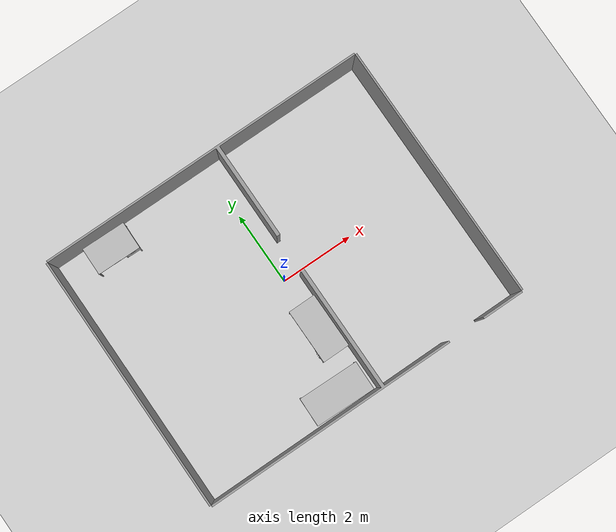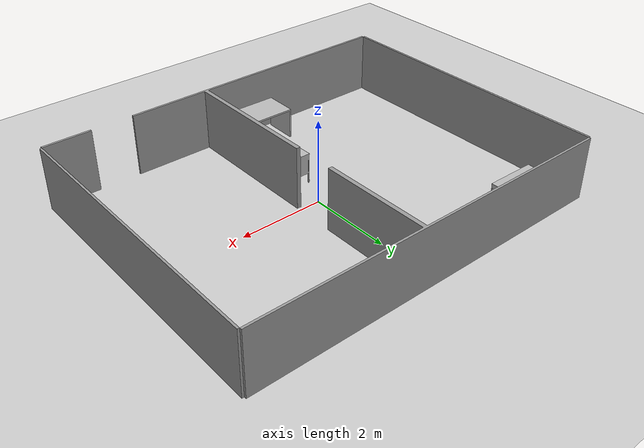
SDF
<sdf version="1.4">
 <world name="default">
  <model name="rnd_room_c3_a">
   <link name="link_0">
    <inertial>
     <mass>1</mass>
     <inertia>
      <ixx>0.166667</ixx>
      <ixy>0</ixy>
      <ixz>0</ixz>
      <iyy>0.166667</iyy>
      <iyz>0</iyz>
      <izz>0.166667</izz>
     </inertia>
    </inertial>
    <visual name="visual">
     <geometry><mesh><uri>model://RandomRooms/rnd_room_c2_03.dae</uri><scale>1 1 1</scale></mesh></geometry>
     <material>
      <lighting>1</lighting>
      <script><uri>model://RandomRooms/rnd_room_c2_03.dae</uri><name>Gazebo/Grey</name></script>
      <shader type="pixel"><normal_map>__default__</normal_map></shader>
     </material>
    </visual>
    <collision name="collision">
     <geometry><mesh><uri>model://RandomRooms/rnd_room_c2_03.dae</uri><scale>1 1 1</scale></mesh></geometry>
     <surface>
      <friction>
       <ode><mu>1</mu><mu2>1</mu2><fdir1>0 0 0</fdir1><slip1>0</slip1><slip2>0</slip2></ode>
       <torsional>
        <coefficient>1</coefficient>
        <patch_radius>0</patch_radius>
        <surface_radius>0</surface_radius>
        <use_patch_radius>1</use_patch_radius>
        <ode><slip>0</slip></ode>
       </torsional>
      </friction>
      <bounce><restitution_coefficient>0</restitution_coefficient><threshold>1e+06</threshold></bounce>
      <contact>
       <collide_without_contact>0</collide_without_contact>
       <collide_without_contact_bitmask>1</collide_without_contact_bitmask>
       <collide_bitmask>1</collide_bitmask>
       <ode>
        <soft_cfm>0</soft_cfm>
        <soft_erp>0.2</soft_erp>
        <kp>1e+13</kp>
        <kd>1</kd>
        <max_vel>0.01</max_vel>
        <min_depth>0</min_depth>
       </ode>
       <bullet>
        <split_impulse>1</split_impulse>
        <split_impulse_penetration_threshold>-0.01</split_impulse_penetration_threshold>
        <soft_cfm>0</soft_cfm>
        <soft_erp>0.2</soft_erp>
        <kp>1e+13</kp>
        <kd>1</kd>
       </bullet>
      </contact>
     </surface>
    </collision>
   </link>
   <static>1</static>
  </model>
  <model name="gplane">
   <link name="body">
    <collision name="gplane_coll">
     <geometry><plane><normal>0 0 1</normal><size>25 25</size></plane></geometry>
     <surface><contact><ode><kp>1e+06</kp><kd>1</kd></ode></contact></surface>
     <laser_retro>2000</laser_retro>
    </collision>
    <visual name="gplane_vis">
     <geometry><plane><normal>0 0 1</normal><size>25 25</size></plane></geometry>
     <material>
      <script>
       <uri>model://base_materials/carpet/scripts</uri>
       <uri>model://base_materials/carpet/textures</uri>
       <name>carpet/carpet01</name>
      </script>
     </material>
     <cast_shadows>0</cast_shadows>
    </visual>
    <velocity_decay><linear>0</linear><angular>0</angular></velocity_decay>
   </link>
   <static>1</static>
  </model>
  <model name="Desk_01_1">
   <link name="link_0">
    <inertial>
     <mass>35</mass>
     <inertia>
      <ixx>0.166667</ixx>
      <ixy>0</ixy>
      <ixz>0</ixz>
      <iyy>0.166667</iyy>
      <iyz>0</iyz>
      <izz>0.166667</izz>
     </inertia>
    </inertial>
    <visual name="visual">
     <geometry><mesh><uri>model://BioRoboticsLab/meshes/Desk_01.dae</uri><scale>1 1 1</scale></mesh></geometry>
     <material><lighting>1</lighting><shader type="pixel"/></material>
    </visual>
    <collision name="collision">
     <geometry><mesh><uri>model://BioRoboticsLab/meshes/Desk_01.dae</uri><scale>1 1 1</scale></mesh></geometry>
     <surface>
      <friction>
       <ode><mu>1</mu><mu2>1</mu2><fdir1>0 0 0</fdir1><slip1>0</slip1><slip2>0</slip2></ode>
       <torsional>
        <coefficient>1</coefficient>
        <patch_radius>0</patch_radius>
        <surface_radius>0</surface_radius>
        <use_patch_radius>1</use_patch_radius>
        <ode><slip>0</slip></ode>
       </torsional>
      </friction>
      <bounce><restitution_coefficient>0</restitution_coefficient><threshold>1e+06</threshold></bounce>
      <contact>
       <collide_without_contact>0</collide_without_contact>
       <collide_without_contact_bitmask>1</collide_without_contact_bitmask>
       <collide_bitmask>1</collide_bitmask>
       <ode>
        <soft_cfm>0</soft_cfm>
        <soft_erp>0.2</soft_erp>
        <kp>1e+13</kp>
        <kd>1</kd>
        <max_vel>0.01</max_vel>
        <min_depth>0</min_depth>
       </ode>
       <bullet>
        <split_impulse>1</split_impulse>
        <split_impulse_penetration_threshold>-0.01</split_impulse_penetration_threshold>
        <soft_cfm>0</soft_cfm>
        <soft_erp>0.2</soft_erp>
        <kp>1e+13</kp>
        <kd>1</kd>
       </bullet>
      </contact>
     </surface>
    </collision>
   </link>
   <static>1</static>
   <pose>0.012292 -1.48442 0 0 -0 1.57431</pose>
  </model>
  <model name="Desk_03_1">
   <link name="link_0">
    <inertial>
     <mass>25</mass>
     <inertia>
      <ixx>0.166667</ixx>
      <ixy>0</ixy>
      <ixz>0</ixz>
      <iyy>0.166667</iyy>
      <iyz>0</iyz>
      <izz>0.166667</izz>
     </inertia>
    </inertial>
    <visual name="visual">
     <geometry><mesh><uri>model://BioRoboticsLab/meshes/Desk_03.dae</uri><scale>1 1 1</scale></mesh></geometry>
     <material><lighting>1</lighting><shader type="pixel"/></material>
    </visual>
    <collision name="collision">
     <geometry><mesh><uri>model://BioRoboticsLab/meshes/Desk_03.dae</uri><scale>1 1 1</scale></mesh></geometry>
     <surface>
      <friction>
       <ode><mu>1</mu><mu2>1</mu2><fdir1>0 0 0</fdir1><slip1>0</slip1><slip2>0</slip2></ode>
       <torsional>
        <coefficient>1</coefficient>
        <patch_radius>0</patch_radius>
        <surface_radius>0</surface_radius>
        <use_patch_radius>1</use_patch_radius>
        <ode><slip>0</slip></ode>
       </torsional>
      </friction>
      <bounce><restitution_coefficient>0</restitution_coefficient><threshold>1e+06</threshold></bounce>
      <contact>
       <collide_without_contact>0</collide_without_contact>
       <collide_without_contact_bitmask>1</collide_without_contact_bitmask>
       <collide_bitmask>1</collide_bitmask>
       <ode>
        <soft_cfm>0</soft_cfm>
        <soft_erp>0.2</soft_erp>
        <kp>1e+13</kp>
        <kd>1</kd>
        <max_vel>0.01</max_vel>
        <min_depth>0</min_depth>
       </ode>
       <bullet>
        <split_impulse>1</split_impulse>
        <split_impulse_penetration_threshold>-0.01</split_impulse_penetration_threshold>
        <soft_cfm>0</soft_cfm>
        <soft_erp>0.2</soft_erp>
        <kp>1e+13</kp>
        <kd>1</kd>
       </bullet>
      </contact>
     </surface>
    </collision>
   </link>
   <static>1</static>
   <pose>-3.09008 3.04155 0 0 -0 3.12757</pose>
  </model>
  <model name="Table_02_2">
   <link name="link_0">
    <inertial>
     <mass>15</mass>
     <inertia>
      <ixx>0.166667</ixx>
      <ixy>0</ixy>
      <ixz>0</ixz>
      <iyy>0.166667</iyy>
      <iyz>0</iyz>
      <izz>0.166667</izz>
     </inertia>
    </inertial>
    <visual name="visual">
     <geometry><mesh><uri>model://BioRoboticsLab/meshes/Table_02.dae</uri><scale>1 1 1</scale></mesh></geometry>
     <material><lighting>1</lighting><shader type="pixel"/></material>
    </visual>
    <collision name="collision">
     <geometry><mesh><uri>model://BioRoboticsLab/meshes/Table_02.dae</uri><scale>1 1 1</scale></mesh></geometry>
     <surface>
      <friction>
       <ode><mu>1</mu><mu2>1</mu2><fdir1>0 0 0</fdir1><slip1>0</slip1><slip2>0</slip2></ode>
       <torsional>
        <coefficient>1</coefficient>
        <patch_radius>0</patch_radius>
        <surface_radius>0</surface_radius>
        <use_patch_radius>1</use_patch_radius>
        <ode><slip>0</slip></ode>
       </torsional>
      </friction>
      <bounce><restitution_coefficient>0</restitution_coefficient><threshold>1e+06</threshold></bounce>
      <contact>
       <collide_without_contact>0</collide_without_contact>
       <collide_without_contact_bitmask>1</collide_without_contact_bitmask>
       <collide_bitmask>1</collide_bitmask>
       <ode>
        <soft_cfm>0</soft_cfm>
        <soft_erp>0.2</soft_erp>
        <kp>1e+13</kp>
        <kd>1</kd>
        <max_vel>0.01</max_vel>
        <min_depth>0</min_depth>
       </ode>
       <bullet>
        <split_impulse>1</split_impulse>
        <split_impulse_penetration_threshold>-0.01</split_impulse_penetration_threshold>
        <soft_cfm>0</soft_cfm>
        <soft_erp>0.2</soft_erp>
        <kp>1e+13</kp>
        <kd>1</kd>
       </bullet>
      </contact>
     </surface>
    </collision>
   </link>
   <static>1</static>
   <pose>-0.530536 -3.11657 -0 0 0 -0.015799</pose>
  </model>
 </world>
</sdf>
